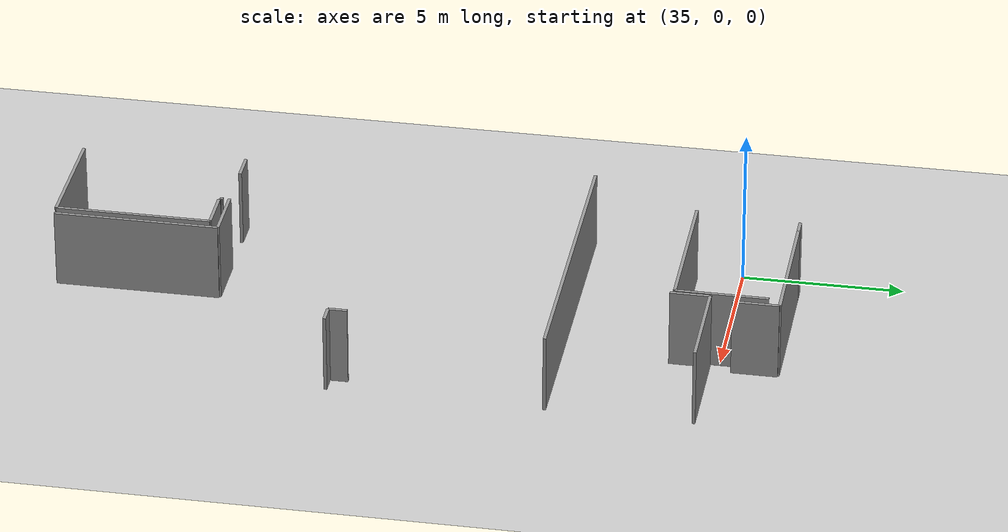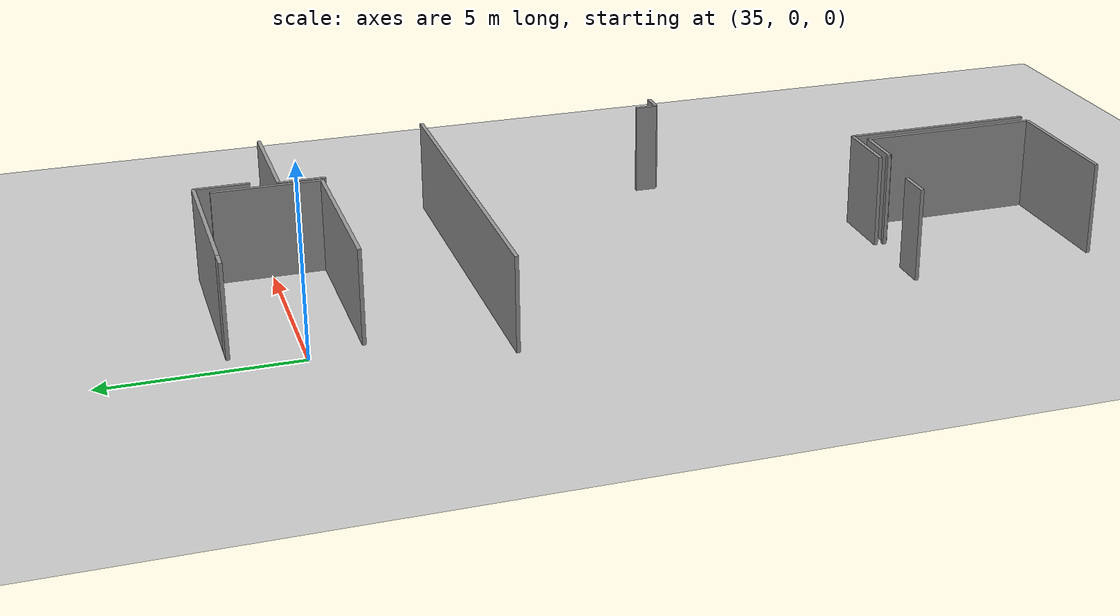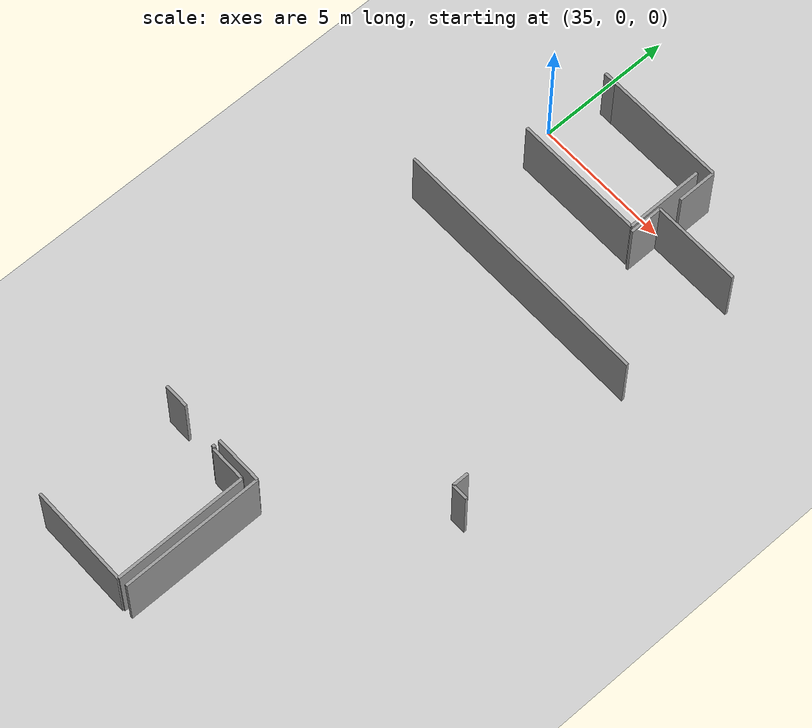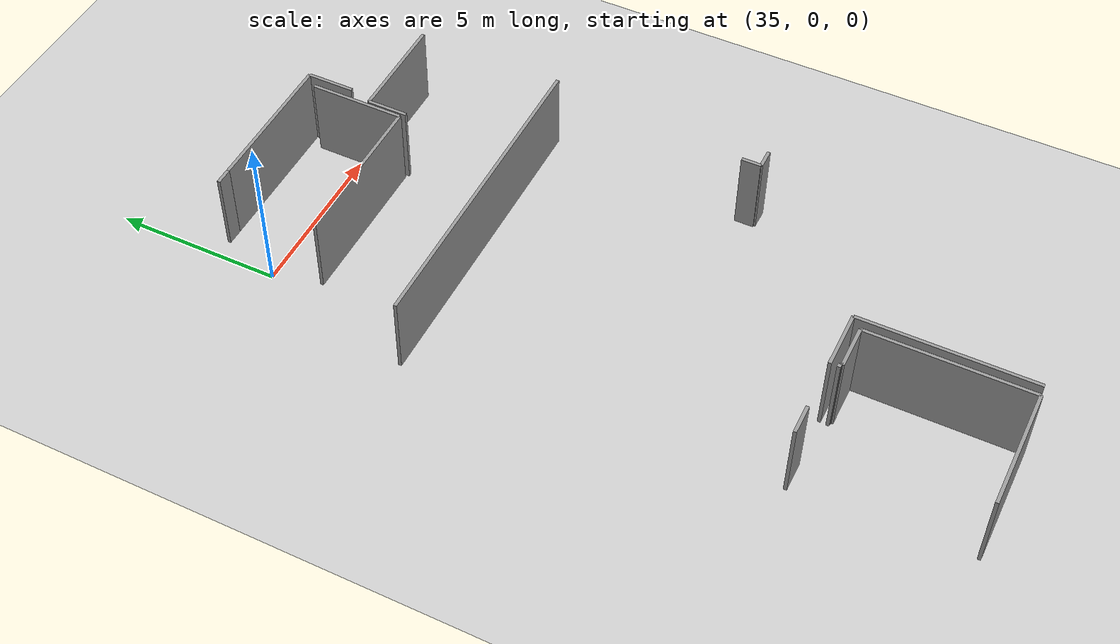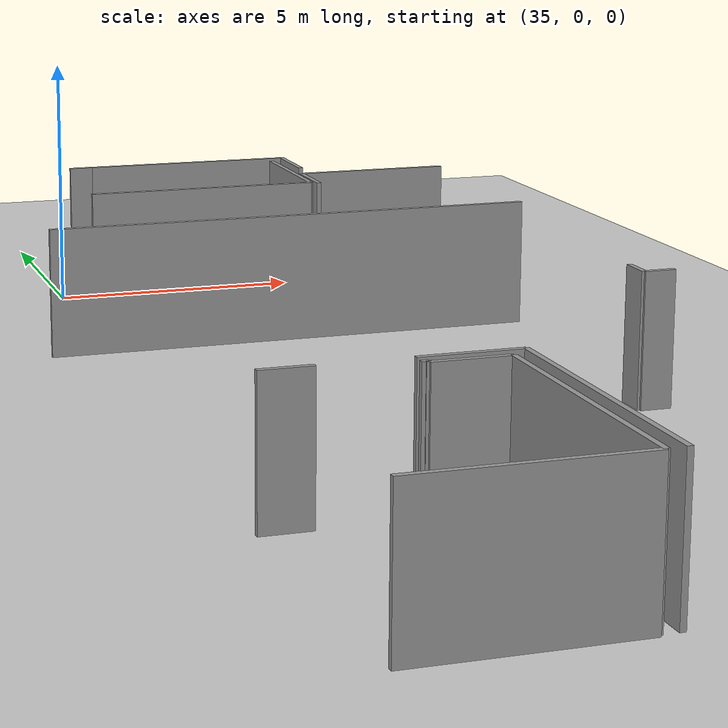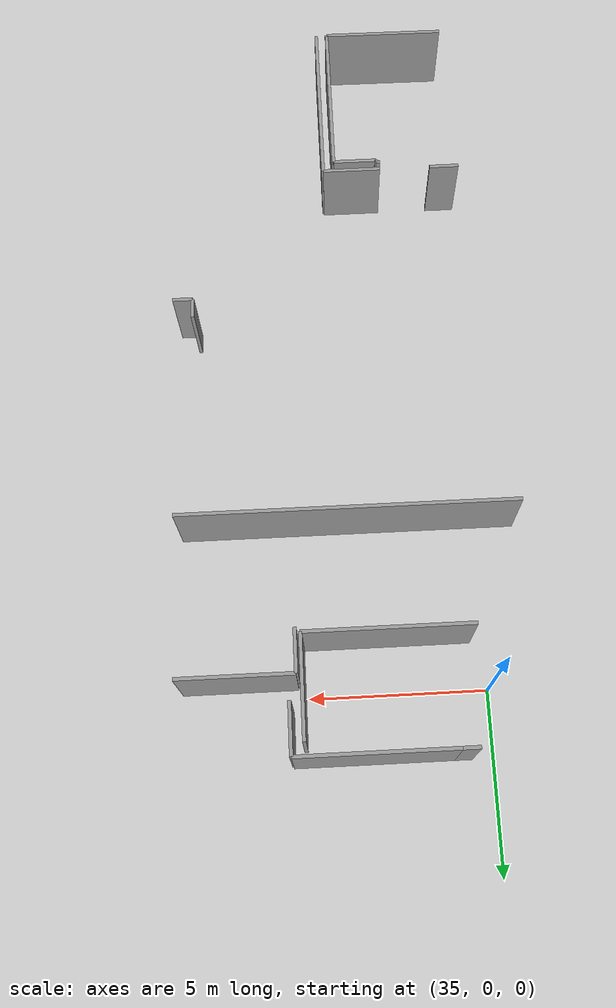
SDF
<sdf version="1.6">
 <world name="default">
  <model name="ground_plane">
   <static>1</static>
   <link name="link">
    <collision name="collision">
     <geometry><plane><normal>0 0 1</normal><size>100 100</size></plane></geometry>
     <surface><friction><ode><mu>100</mu><mu2>50</mu2></ode></friction></surface>
    </collision>
    <visual name="visual">
     <cast_shadows>0</cast_shadows>
     <geometry><plane><normal>0 0 1</normal><size>100 100</size></plane></geometry>
     <material>
      <script><uri>file://media/materials/scripts/gazebo.material</uri><name>Gazebo/Grey</name></script>
     </material>
    </visual>
   </link>
  </model>
  <model name="50055638">
   <static>1</static>
   <link name="Wall_483">
    <collision name="Wall_483_Collision">
     <geometry><box><size>0.114769412617 0.1 2.5</size></box></geometry>
     <pose>0.0573847063085 0 1.25 0 0 0</pose>
    </collision>
    <visual name="Wall_483_Visual">
     <pose>0.0573847063085 0 1.25 0 0 0</pose>
     <geometry><box><size>0.114769412617 0.1 2.5</size></box></geometry>
     <material>
      <script><uri>file://media/materials/scripts/gazebo.material</uri><name>Gazebo/Grey</name></script>
      <ambient>1 1 1 1</ambient>
     </material>
    </visual>
    <pose>107.763521629 -36.8498147548 0 0 0 0.0</pose>
   </link>
   <link name="Wall_484">
    <collision name="Wall_484_Collision">
     <geometry><box><size>0.0653283256757 0.1 2.5</size></box></geometry>
     <pose>0.0326641628378 0 1.25 0 0 0</pose>
    </collision>
    <visual name="Wall_484_Visual">
     <pose>0.0326641628378 0 1.25 0 0 0</pose>
     <geometry><box><size>0.0653283256757 0.1 2.5</size></box></geometry>
     <material>
      <script><uri>file://media/materials/scripts/gazebo.material</uri><name>Gazebo/Grey</name></script>
      <ambient>1 1 1 1</ambient>
     </material>
    </visual>
    <pose>107.878291042 -36.8498147548 0 0 0 -1.57079632679</pose>
   </link>
   <link name="Wall_485">
    <collision name="Wall_485_Collision">
     <geometry><box><size>1.31953050032 0.1 2.5</size></box></geometry>
     <pose>0.65976525016 0 1.25 0 0 0</pose>
    </collision>
    <visual name="Wall_485_Visual">
     <pose>0.65976525016 0 1.25 0 0 0</pose>
     <geometry><box><size>1.31953050032 0.1 2.5</size></box></geometry>
     <material>
      <script><uri>file://media/materials/scripts/gazebo.material</uri><name>Gazebo/Grey</name></script>
      <ambient>1 1 1 1</ambient>
     </material>
    </visual>
    <pose>107.878291042 -36.9151430805 0 0 0 0.0</pose>
   </link>
   <link name="Wall_486">
    <collision name="Wall_486_Collision">
     <geometry><box><size>4.82959347734 0.1 2.5</size></box></geometry>
     <pose>2.41479673867 0 1.25 0 0 0</pose>
    </collision>
    <visual name="Wall_486_Visual">
     <pose>2.41479673867 0 1.25 0 0 0</pose>
     <geometry><box><size>4.82959347734 0.1 2.5</size></box></geometry>
     <material>
      <script><uri>file://media/materials/scripts/gazebo.material</uri><name>Gazebo/Grey</name></script>
      <ambient>1 1 1 1</ambient>
     </material>
    </visual>
    <pose>109.197821542 -36.9151430805 0 0 0 -1.57079632679</pose>
   </link>
   <link name="Wall_487">
    <collision name="Wall_487_Collision">
     <geometry><box><size>3.66043807688 0.1 2.5</size></box></geometry>
     <pose>1.83021903844 0 1.25 0 0 0</pose>
    </collision>
    <visual name="Wall_487_Visual">
     <pose>1.83021903844 0 1.25 0 0 0</pose>
     <geometry><box><size>3.66043807688 0.1 2.5</size></box></geometry>
     <material>
      <script><uri>file://media/materials/scripts/gazebo.material</uri><name>Gazebo/Grey</name></script>
      <ambient>1 1 1 1</ambient>
     </material>
    </visual>
    <pose>109.197821542 -41.7447365578 0 0 0 3.13843294188</pose>
   </link>
   <link name="Wall_488">
    <collision name="Wall_488_Collision">
     <geometry><box><size>5.13640783177 0.1 2.5</size></box></geometry>
     <pose>2.56820391589 0 1.25 0 0 0</pose>
    </collision>
    <visual name="Wall_488_Visual">
     <pose>2.56820391589 0 1.25 0 0 0</pose>
     <geometry><box><size>5.13640783177 0.1 2.5</size></box></geometry>
     <material>
      <script><uri>file://media/materials/scripts/gazebo.material</uri><name>Gazebo/Grey</name></script>
      <ambient>1 1 1 1</ambient>
     </material>
    </visual>
    <pose>109.533360024 -41.7364751937 0 0 0 1.57079632679</pose>
   </link>
   <link name="Wall_489">
    <collision name="Wall_489_Collision">
     <geometry><box><size>1.75102790435 0.1 2.5</size></box></geometry>
     <pose>0.875513952173 0 1.25 0 0 0</pose>
    </collision>
    <visual name="Wall_489_Visual">
     <pose>0.875513952173 0 1.25 0 0 0</pose>
     <geometry><box><size>1.75102790435 0.1 2.5</size></box></geometry>
     <material>
      <script><uri>file://media/materials/scripts/gazebo.material</uri><name>Gazebo/Grey</name></script>
      <ambient>1 1 1 1</ambient>
     </material>
    </visual>
    <pose>109.533360024 -36.6000673619 0 0 0 3.14159265359</pose>
   </link>
   <link name="Wall_490">
    <collision name="Wall_490_Collision">
     <geometry><box><size>0.893244110601 0.1 2.5</size></box></geometry>
     <pose>0.4466220553 0 1.25 0 0 0</pose>
    </collision>
    <visual name="Wall_490_Visual">
     <pose>0.4466220553 0 1.25 0 0 0</pose>
     <geometry><box><size>0.893244110601 0.1 2.5</size></box></geometry>
     <material>
      <script><uri>file://media/materials/scripts/gazebo.material</uri><name>Gazebo/Grey</name></script>
      <ambient>1 1 1 1</ambient>
     </material>
    </visual>
    <pose>106.235423458 -36.6000673619 0 0 0 3.14159265359</pose>
   </link>
   <link name="Wall_496">
    <collision name="Wall_496_Collision">
     <geometry><box><size>0.587954931081 0.1 2.5</size></box></geometry>
     <pose>0.293977465541 0 1.25 0 0 0</pose>
    </collision>
    <visual name="Wall_496_Visual">
     <pose>0.293977465541 0 1.25 0 0 0</pose>
     <geometry><box><size>0.587954931081 0.1 2.5</size></box></geometry>
     <material>
      <script><uri>file://media/materials/scripts/gazebo.material</uri><name>Gazebo/Grey</name></script>
      <ambient>1 1 1 1</ambient>
     </material>
    </visual>
    <pose>113.596934398 -31.7692029055 0 0 0 -1.57079632679</pose>
   </link>
   <link name="Wall_497">
    <collision name="Wall_497_Collision">
     <geometry><box><size>0.583379406326 0.1 2.5</size></box></geometry>
     <pose>0.291689703163 0 1.25 0 0 0</pose>
    </collision>
    <visual name="Wall_497_Visual">
     <pose>0.291689703163 0 1.25 0 0 0</pose>
     <geometry><box><size>0.583379406326 0.1 2.5</size></box></geometry>
     <material>
      <script><uri>file://media/materials/scripts/gazebo.material</uri><name>Gazebo/Grey</name></script>
      <ambient>1 1 1 1</ambient>
     </material>
    </visual>
    <pose>113.596934398 -32.3571578365 0 0 0 0.0</pose>
   </link>
   <link name="Wall_520">
    <collision name="Wall_520_Collision">
     <geometry><box><size>1.22115671808 0.1 2.5</size></box></geometry>
     <pose>0.610578359039 0 1.25 0 0 0</pose>
    </collision>
    <visual name="Wall_520_Visual">
     <pose>0.610578359039 0 1.25 0 0 0</pose>
     <geometry><box><size>1.22115671808 0.1 2.5</size></box></geometry>
     <material>
      <script><uri>file://media/materials/scripts/gazebo.material</uri><name>Gazebo/Grey</name></script>
      <ambient>1 1 1 1</ambient>
     </material>
    </visual>
    <pose>110.928259585 -22.4198806551 0 0 0 1.57079632679</pose>
   </link>
   <link name="Wall_521">
    <collision name="Wall_521_Collision">
     <geometry><box><size>3.24824128267 0.1 2.5</size></box></geometry>
     <pose>1.62412064134 0 1.25 0 0 0</pose>
    </collision>
    <visual name="Wall_521_Visual">
     <pose>1.62412064134 0 1.25 0 0 0</pose>
     <geometry><box><size>3.24824128267 0.1 2.5</size></box></geometry>
     <material>
      <script><uri>file://media/materials/scripts/gazebo.material</uri><name>Gazebo/Grey</name></script>
      <ambient>1 1 1 1</ambient>
     </material>
    </visual>
    <pose>110.928259585 -21.198723937 0 0 0 0.0</pose>
   </link>
   <link name="Wall_523">
    <collision name="Wall_523_Collision">
     <geometry><box><size>9.70265443985 0.1 2.5</size></box></geometry>
     <pose>4.85132721992 0 1.25 0 0 0</pose>
    </collision>
    <visual name="Wall_523_Visual">
     <pose>4.85132721992 0 1.25 0 0 0</pose>
     <geometry><box><size>9.70265443985 0.1 2.5</size></box></geometry>
     <material>
      <script><uri>file://media/materials/scripts/gazebo.material</uri><name>Gazebo/Grey</name></script>
      <ambient>1 1 1 1</ambient>
     </material>
    </visual>
    <pose>114.176500867 -25.6988796319 0 0 0 3.14159265359</pose>
   </link>
   <link name="Wall_528">
    <collision name="Wall_528_Collision">
     <geometry><box><size>2.85461905579 0.1 2.5</size></box></geometry>
     <pose>1.42730952789 0 1.25 0 0 0</pose>
    </collision>
    <visual name="Wall_528_Visual">
     <pose>1.42730952789 0 1.25 0 0 0</pose>
     <geometry><box><size>2.85461905579 0.1 2.5</size></box></geometry>
     <material>
      <script><uri>file://media/materials/scripts/gazebo.material</uri><name>Gazebo/Grey</name></script>
      <ambient>1 1 1 1</ambient>
     </material>
    </visual>
    <pose>110.782986674 -19.4382907873 0 0 0 -1.57079632679</pose>
   </link>
   <link name="Wall_529">
    <collision name="Wall_529_Collision">
     <geometry><box><size>4.75257320613 0.1 2.5</size></box></geometry>
     <pose>2.37628660307 0 1.25 0 0 0</pose>
    </collision>
    <visual name="Wall_529_Visual">
     <pose>2.37628660307 0 1.25 0 0 0</pose>
     <geometry><box><size>4.75257320613 0.1 2.5</size></box></geometry>
     <material>
      <script><uri>file://media/materials/scripts/gazebo.material</uri><name>Gazebo/Grey</name></script>
      <ambient>1 1 1 1</ambient>
     </material>
    </visual>
    <pose>110.782986674 -22.2929098431 0 0 0 -3.14092407936</pose>
   </link>
   <link name="Wall_530">
    <collision name="Wall_530_Collision">
     <geometry><box><size>0.486657896911 0.1 2.5</size></box></geometry>
     <pose>0.243328948455 0 1.25 0 0 0</pose>
    </collision>
    <visual name="Wall_530_Visual">
     <pose>0.243328948455 0 1.25 0 0 0</pose>
     <geometry><box><size>0.486657896911 0.1 2.5</size></box></geometry>
     <material>
      <script><uri>file://media/materials/scripts/gazebo.material</uri><name>Gazebo/Grey</name></script>
      <ambient>1 1 1 1</ambient>
     </material>
    </visual>
    <pose>106.71509097 -19.0702152403 0 0 0 3.14159265359</pose>
   </link>
   <link name="Wall_540">
    <collision name="Wall_540_Collision">
     <geometry><box><size>1.43264764011 0.1 2.5</size></box></geometry>
     <pose>0.716323820055 0 1.25 0 0 0</pose>
    </collision>
    <visual name="Wall_540_Visual">
     <pose>0.716323820055 0 1.25 0 0 0</pose>
     <geometry><box><size>1.43264764011 0.1 2.5</size></box></geometry>
     <material>
      <script><uri>file://media/materials/scripts/gazebo.material</uri><name>Gazebo/Grey</name></script>
      <ambient>1 1 1 1</ambient>
     </material>
    </visual>
    <pose>111.131743338 -20.5010835097 0 0 0 1.57079632679</pose>
   </link>
   <link name="Wall_541">
    <collision name="Wall_541_Collision">
     <geometry><box><size>4.41665272659 0.1 2.5</size></box></geometry>
     <pose>2.20832636329 0 1.25 0 0 0</pose>
    </collision>
    <visual name="Wall_541_Visual">
     <pose>2.20832636329 0 1.25 0 0 0</pose>
     <geometry><box><size>4.41665272659 0.1 2.5</size></box></geometry>
     <material>
      <script><uri>file://media/materials/scripts/gazebo.material</uri><name>Gazebo/Grey</name></script>
      <ambient>1 1 1 1</ambient>
     </material>
    </visual>
    <pose>111.131743338 -19.0684358696 0 0 0 -3.14118977591</pose>
   </link>
   <pose>-70.65 20.8744774687 0 0 0 0</pose>
  </model>
 </world>
</sdf>
